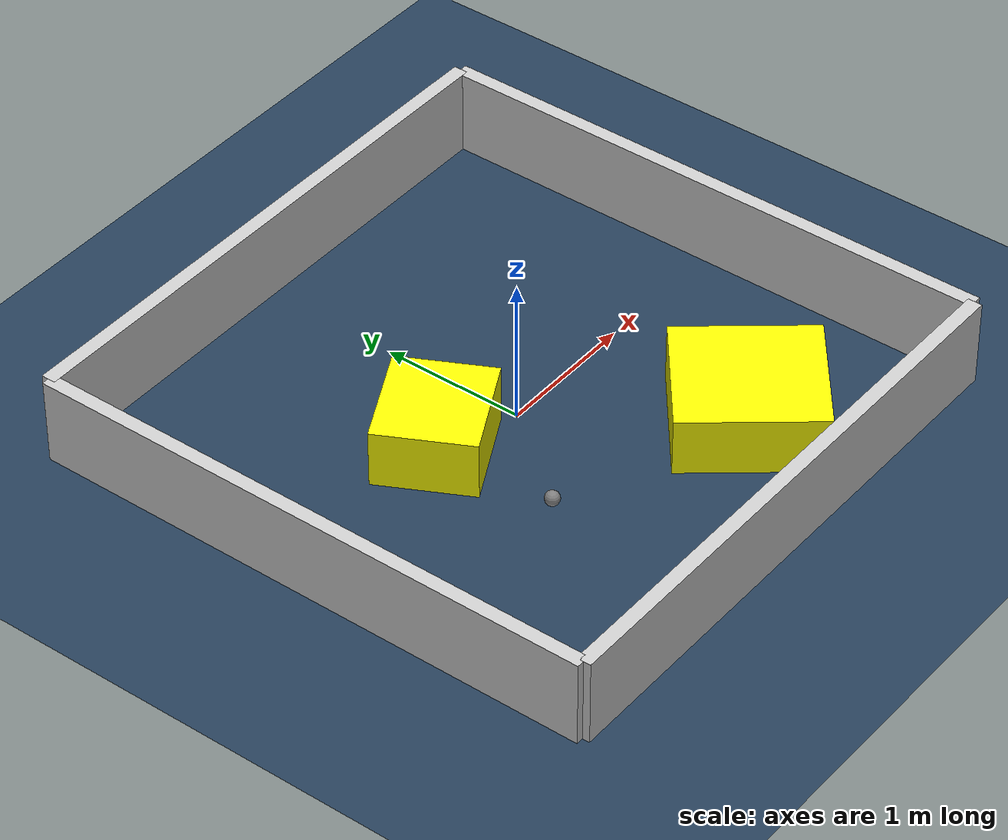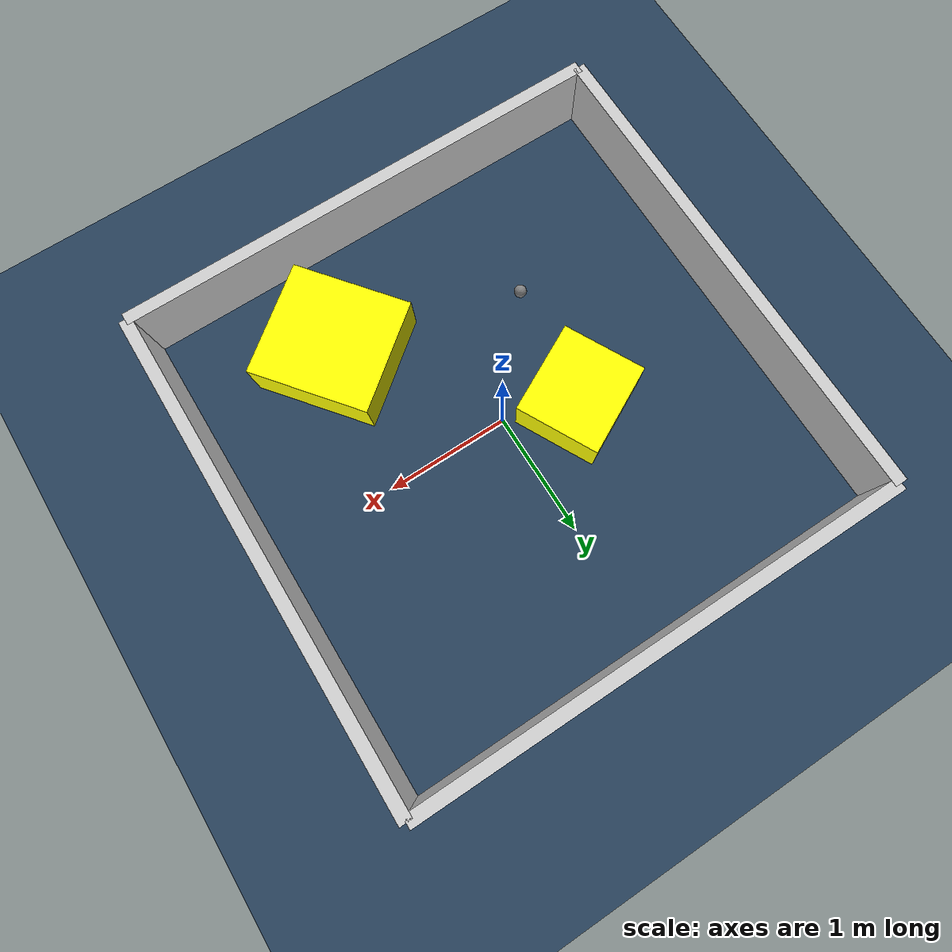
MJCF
<?xml version="1.0" ?>
<mujoco model="generated_environment">
  <option timestep="0.01" integrator="RK4" cone="elliptic"/>
  <default>
    <geom density="1"/>
  </default>
  <asset>
    <texture builtin="gradient" height="3072" rgb1="0.3 0.5 0.7" rgb2="0 0 0" type="skybox" width="512"/>
    <texture builtin="checker" height="300" mark="edge" markrgb="0.8 0.8 0.8" name="groundplane" rgb1="0.2 0.3 0.4" rgb2="0.1 0.2 0.3" type="2d" width="300"/>
    <material name="groundplane" reflectance="0.2" texrepeat="5 5" texture="groundplane" texuniform="true"/>
    <material name="robot" rgba="0.0 1.0 0.0 1"/>
  </asset>
  <worldbody>
    <light dir="0 0 -1" directional="true" pos="0 0 1.5"/>
    <geom condim="4" friction="1.0 0.005 0.001" material="groundplane" name="floor" size="0 0 0.05" type="plane"/>
    <body name="walls">
      <geom name="wall_1" condim="4" pos="-2.0 0.0 0.3" rgba="0.800000011920929 0.800000011920929 0.800000011920929 1.0" size="0.05 2.0 0.3" type="box"/>
      <geom name="wall_2" condim="4" pos="2.0 0.0 0.3" rgba="0.800000011920929 0.800000011920929 0.800000011920929 1.0" size="0.05 2.0 0.3" type="box"/>
      <geom name="wall_3" condim="4" pos="0.0 -2.0 0.3" rgba="0.800000011920929 0.800000011920929 0.800000011920929 1.0" size="2.0 0.05 0.3" type="box"/>
      <geom name="wall_4" condim="4" pos="0.0 2.0 0.3" rgba="0.800000011920929 0.800000011920929 0.800000011920929 1.0" size="2.0 0.05 0.3" type="box"/>
    </body>
    <body name="robot">
      <joint name="joint_x" type="slide" pos="0 0 0" axis="1 0 0"/>
      <joint name="joint_y" type="slide" pos="0 0 0" axis="0 1 0"/>
      <geom name="robot" type="sphere" pos="-0.6578557414871782 -0.7702118957676676 0.2" size="0.05" mass="5." friction="1.0 0.005 0.0001" condim="4"/>
      <site name="sensor_ball"/>
    </body>
    <body name="obstacle_1_movable">
      <geom name="obstacle_1_movable" condim="4" pos="-0.5638986528399224 0.18927656419646 0.2" euler="0 0 117.46050440801116" friction="1.0 0.005 0.001" rgba="1 1 0 1" size="0.3383027323785144 0.37279387203573733 0.2" type="box" mass="0.1"/>
      <joint type="free"/>
    </body>
    <body name="obstacle_2_movable">
      <geom name="obstacle_2_movable" condim="4" pos="0.8002714167372038 -1.164188420932786 0.2" euler="0 0 38.30765722493623" friction="1.0 0.005 0.001" rgba="1 1 0 1" size="0.4580258066612802 0.48282997750450624 0.2" type="box" mass="0.1"/>
      <joint type="free"/>
    </body>
  </worldbody>
  <actuator>
    <motor name="actuator_x" joint="joint_x" gear="1" ctrlrange="-1 1"/>
    <motor name="actuator_y" joint="joint_y" gear="1" ctrlrange="-1 1"/>
  </actuator>
</mujoco>
